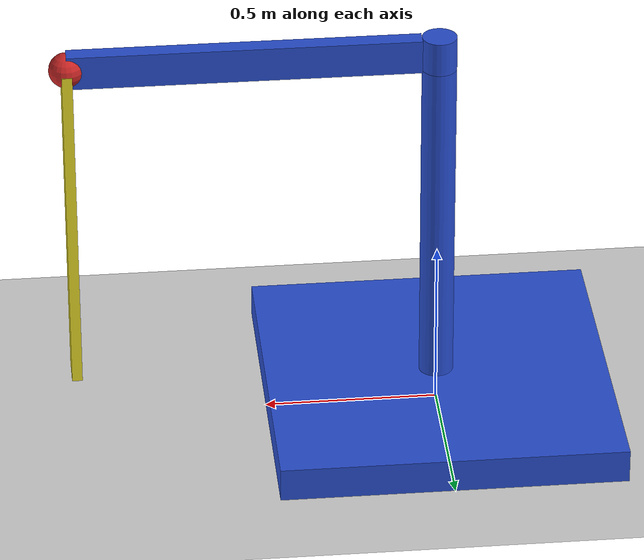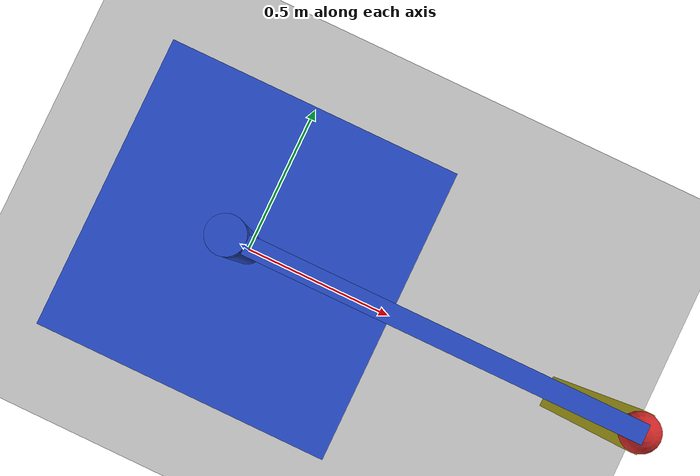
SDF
<?xml version="1.0" ?>
<sdf version="1.3">
  <world name="default">
    <physics type="ode">
      <gravity>0 0 -1</gravity>
      <ode>
        <solver>
          <type>quick</type>
          <dt>0.001</dt>
          <iters>40</iters>
          <sor>1.0</sor>
        </solver>
        <constraints>
          <cfm>0.0</cfm>
          <erp>0.2</erp>
          <contact_max_correcting_vel>100.0</contact_max_correcting_vel>
          <contact_surface_layer>0.0</contact_surface_layer>
        </constraints>
      </ode>
    </physics>
    <!-- A global light source -->
    <include>
      <uri>model://sun</uri>
    </include>
    <!-- A ground plane -->
    <include>
      <uri>model://ground_plane</uri>
    </include>
    <include>
      <uri>model://models/standup_pendulum</uri>
      <pose>0 0 0 0 0 0</pose>
    </include>

    <plugin name="world-plugin" filename="libworld-plugin.so"/>
  </world>
</sdf>

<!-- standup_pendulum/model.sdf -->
<sdf version="1.4">
  <model name="pendulum">
    <link name="base">
      <inertial>
        <pose>0 0 0.00099 0 0 0</pose>
        <inertia>
          <ixx>1.11</ixx>
          <ixy>0</ixy>
          <ixz>0</ixz>
          <iyy>100.11</iyy>
          <iyz>0</iyz>
          <izz>1.01</izz>
        </inertia>
        <mass>101.0</mass>
      </inertial>
      <collision name="base_geom">
        <pose>0 0 0.05 0 0 0</pose>
        <geometry>
          <box>
            <size>1.0 1.0 0.1</size>
          </box>
        </geometry>
      </collision>
      <visual name="base_geom_visual">
        <pose>0 0 0.05 0 0 0</pose>
        <geometry>
          <box>
            <size>1.0 1.0 0.1</size>
          </box>
        </geometry>
        <material>
          <script>
            <uri>file://media/materials/scripts/gazebo.material</uri>
            <name>Gazebo/Blue</name>
          </script>
        </material>
      </visual>
      <visual name="base_geom_trunk_visual">
        <pose>0 0 0.6 0 0 0</pose>
        <geometry>
          <cylinder>
            <radius>0.05</radius>
            <length>1.0</length>
          </cylinder>
        </geometry>
        <material>
          <script>
            <uri>file://media/materials/scripts/gazebo.material</uri>
            <name>Gazebo/Blue</name>
          </script>
        </material>
      </visual>
      <visual name="base_connector_geom_visual">
        <pose>0 0 1.15 0 0 0</pose>
        <geometry>
          <cylinder>
            <radius>0.05</radius>
            <length>0.1</length>
          </cylinder>
        </geometry>
        <material>
          <script>
            <uri>file://media/materials/scripts/gazebo.material</uri>
            <name>Gazebo/Blue</name>
          </script>
        </material>
      </visual>
      <visual name="base_shoulder_visual">
        <pose>0.55 0 1.15 0 0 0</pose>
        <geometry>
          <box>
            <size>1.0 0.05 0.1</size>
          </box>
        </geometry>
        <material>
          <script>
            <uri>file://media/materials/scripts/gazebo.material</uri>
            <name>Gazebo/Blue</name>
          </script>
        </material>
      </visual>
    </link>
    <link name="pivot">
      <pose>0 0 1.15 3.14159 0 0</pose>
      <inertial>
	<pose>0 0 1.15 0 0 0</pose>
        <inertia>
          <ixx>0</ixx>
          <ixy>0</ixy>
          <ixz>0</ixz>
          <iyy>0.4</iyy>
          <iyz>0</iyz>
          <izz>0.4</izz>
        </inertia>
        <mass>1.2</mass>
      </inertial>
      <visual name="pivot_geom_visual">
        <pose>1.05 0 0 0 0 0</pose>
        <geometry>
          <sphere>
            <radius>0.05</radius>
          </sphere>
        </geometry>
        <material>
          <script>
            <uri>file://media/materials/scripts/gazebo.material</uri>
            <name>Gazebo/Red</name>
          </script>
        </material>
      </visual>
      <visual name="arm_geom_visual">
        <pose>1.05 0 0.5 0 0 0</pose>
        <geometry>
          <box>
            <size>0.03 0.1 1.0</size>
          </box>
        </geometry>
        <material>
          <script>
            <uri>file://media/materials/scripts/gazebo.material</uri>
            <name>Gazebo/Yellow</name>
          </script>
        </material>
      </visual>
    </link>
    <joint name="pivot_joint" type="revolute">
      <parent>base</parent>
      <child>pivot</child>
      <axis>
        <dynamics>
          <damping>0.000000</damping>
          <friction>0.000000</friction>
        </dynamics>
        <xyz>1 0 0</xyz>
      </axis>
    </joint>

    <plugin name='controller' filename='libcontroller.so'/>

  </model>
</sdf>
